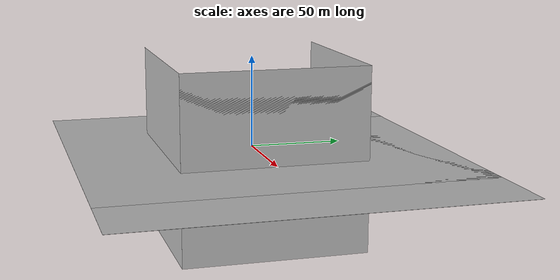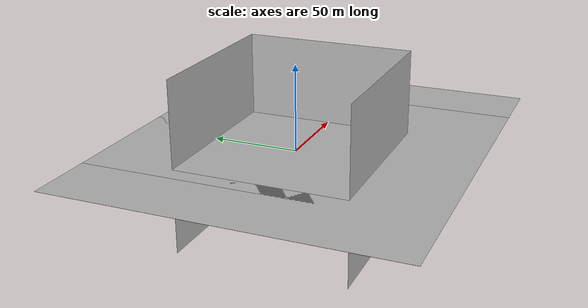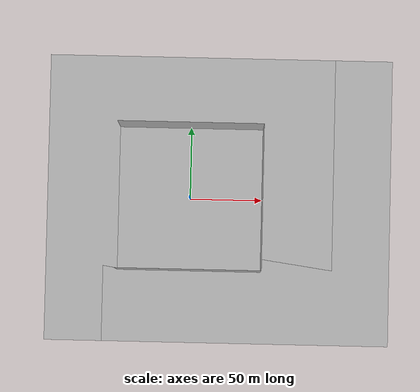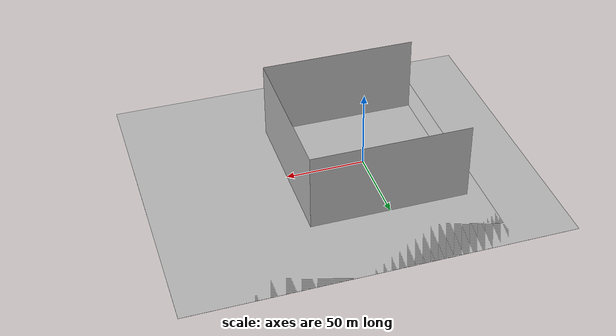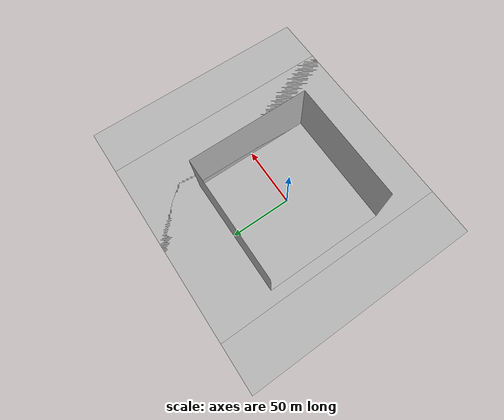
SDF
<sdf version="1.6">
 <world name="default">
  <scene>
   <sky><clouds><speed>0.5</speed></clouds></sky>
   <ambient>0.7 0.7 0.7 1</ambient>
   <background>0.5 0.5 0.5 1</background>
   <shadows>1</shadows>
  </scene>
  <include><uri>model://sun</uri></include>
  <include><uri>model://concrete_plane</uri></include>
  <include><uri>model://concrete_plane</uri><pose>40 0 0 0 0 0</pose></include>
  <include><uri>model://feature</uri><pose>0 0 0.05 0 0 0</pose></include>
  <include><uri>model://feature</uri><pose>0 50 0.05 1.570796 0 0</pose></include>
  <include><uri>model://feature</uri><pose>0 -50 0.05 -1.570796 0 0</pose></include>
  <include><uri>model://feature</uri><pose>50 0 0.05 0 -1.570796 0</pose></include>
  <include><uri>model://feature</uri><pose>50 0 0.05 0 1.570796 0</pose></include>
  <physics name="default_physics" default="0" type="ode">
   <gravity>0 0 -9.8066</gravity>
   <ode>
    <solver>
     <type>quick</type>
     <iters>10</iters>
     <sor>1.3</sor>
     <use_dynamic_moi_rescaling>0</use_dynamic_moi_rescaling>
    </solver>
    <constraints>
     <cfm>0</cfm>
     <erp>0.2</erp>
     <contact_max_correcting_vel>100</contact_max_correcting_vel>
     <contact_surface_layer>0.001</contact_surface_layer>
    </constraints>
   </ode>
   <max_step_size>0.004</max_step_size>
   <real_time_factor>10</real_time_factor>
   <real_time_update_rate>250</real_time_update_rate>
   <magnetic_field>6.0e-6 2.3e-5 -4.2e-5</magnetic_field>
  </physics>
 </world>
</sdf>

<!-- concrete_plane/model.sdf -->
<sdf version="1.5">
  <model name="concrete_plane">
    <static>true</static>
    <link name="link">
      <collision name="collision">
        <geometry>
          <box>
            <size>200 200 .1</size>
          </box>
        </geometry>
      </collision>
      <visual name="visual">
        <cast_shadows>false</cast_shadows>
        <geometry>
          <box>
            <size>200 200 .1</size>
          </box>
        </geometry>
        <material>
          <script>
            <uri>model://concrete_plane/materials/scripts</uri>
            <uri>model://concrete_plane/materials/textures</uri>
            <name>vrc/concrete</name>
          </script>
        </material>
      </visual>
    </link>
  </model>
</sdf>

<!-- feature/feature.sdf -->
<sdf version="1.5">
  <model name="feature">
    <static>true</static>
    <link name="link">
      <visual name="visual">
        <cast_shadows>false</cast_shadows>
        <geometry>
          <box>
            <size>100 100 0.01</size>
          </box>
        </geometry>
        <material>
          <script>
		<uri>model://feature/materials/scripts</uri>
		<uri>model://feature/materials/textures</uri>
		<name>feature/complex</name>
          </script>
        </material>
      </visual>
      <collision name="visual">
        <cast_shadows>false</cast_shadows>
        <geometry>
          <box>
            <size>100 100 0.02</size>
          </box>
        </geometry>
      </collision>
    </link>
  </model>
</sdf>
